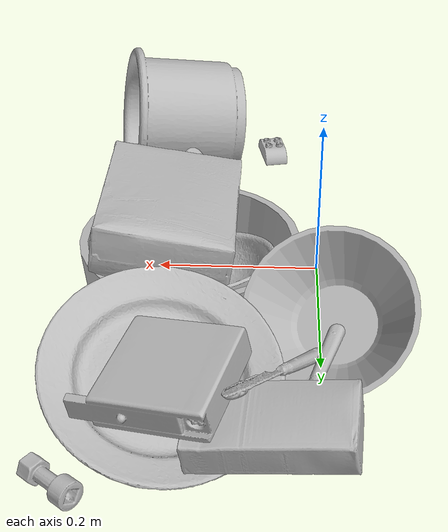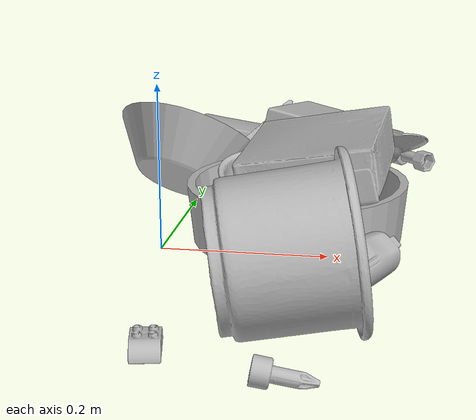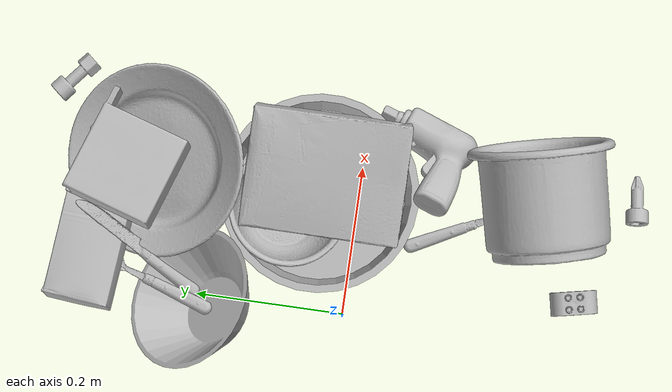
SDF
<sdf version="1.4">
  <world name="default">
    <light name="light1" type="point">
      <pose>0 0 1 0 0 0</pose>
      <diffuse>3 3 3 1</diffuse>
      <specular>3 3 3 1</specular>
    </light>
    <light name="light2" type="point">
      <pose>0 0.5 2 0 0 0</pose>
      <diffuse>1 1 1 1</diffuse>
      <specular>1 1 1 1</specular>
    </light>
    <light name="light3" type="point">
      <pose>0 0.5 2 0 0 0</pose>
      <diffuse>3 3 3 1</diffuse>
      <specular>3 3 3 1</specular>
    </light>
    <scene>
      <ambient>0.7 0.7 0.7</ambient>
    </scene>
    <model name="plate1">
      <link name="link_plate1">
        <collision name="default">
          <geometry>
            <mesh>
              <uri>model://plate/collision_meshes/collision.obj</uri>
              <scale>1.0 1.0 1.0</scale>
            </mesh>
          </geometry>
          <surface>
            <friction>
              <ode>
                <mu>0.5</mu>
                <mu2>0.5</mu2>
              </ode>
            </friction>
          <contact>
        <ode>
            <max_vel>0</max_vel>
            <min_depth>0.0001</min_depth>
            <kp>1e8</kp>
        </ode>
    </contact></surface>
        </collision>
        <visual name="default">
          <geometry>
            <mesh>
              <uri>model://plate/visual_meshes/visual.dae</uri>
              <scale>1.0 1.0 1.0</scale>
            </mesh>
          </geometry>
        </visual>
        <inertial>
          <mass>0.11001742631196976</mass>
          <pose>-0.0006044686888344586 0.000278257648460567 -0.0010561998933553696 0.00221878912528286 -0.0032254756485070152 0.4526088917028743</pose>
          <inertia>
            <ixx>0.00051466376</ixx>
            <iyy>0.0005097412</iyy>
            <izz>0.0010066056</izz>
            <ixy>0</ixy>
            <ixz>0</ixz>
            <iyz>0</iyz>
          </inertia>
        </inertial>
      </link>
      <pose>0.1705586165189743 0.27462610602378845 0.04454606771469116 -0.38671511070744985 -0.1276548088235757 0.07230656549532269</pose>
    </model>
    <model name="plate2">
      <link name="link_plate2">
        <collision name="default">
          <geometry>
            <mesh>
              <uri>model://pan_tefal/collision_meshes/collision.obj</uri>
              <scale>1.0 1.0 1.0</scale>
            </mesh>
          </geometry>
          <surface>
            <friction>
              <ode>
                <mu>0.5</mu>
                <mu2>0.5</mu2>
              </ode>
            </friction>
          <contact>
        <ode>
            <max_vel>0</max_vel>
            <min_depth>0.0001</min_depth>
            <kp>1e8</kp>
        </ode>
    </contact></surface>
        </collision>
        <visual name="default">
          <geometry>
            <mesh>
              <uri>model://pan_tefal/visual_meshes/visual.dae</uri>
              <scale>1.0 1.0 1.0</scale>
            </mesh>
          </geometry>
        </visual>
        <inertial>
          <mass>1.457576870918274</mass>
          <pose>-0.00018002426077146083 3.279360316810198e-05 -0.008514936082065105 0.0008190306735146073 -0.00033013365411173643 -0.33185917339097665</pose>
          <inertia>
            <ixx>0.010061583</ixx>
            <iyy>0.01012645</iyy>
            <izz>0.01852144</izz>
            <ixy>0</ixy>
            <ixz>0</ixz>
            <iyz>0</iyz>
          </inertia>
        </inertial>
      </link>
      <pose>0.15672647953033447 0.052457913756370544 0.038050588220357895 4.655690092866558e-06 -1.2613519803240164e-05 0.3229282234992718</pose>
    </model>
    <model name="bowl1">
      <link name="link_bowl1">
        <collision name="default">
          <geometry>
            <mesh>
              <uri>model://bowl_a/collision_meshes/collision.obj</uri>
              <scale>1.0 1.0 1.0</scale>
            </mesh>
          </geometry>
          <surface>
            <friction>
              <ode>
                <mu>0.5</mu>
                <mu2>0.5</mu2>
              </ode>
            </friction>
          <contact>
        <ode>
            <max_vel>0</max_vel>
            <min_depth>0.0001</min_depth>
            <kp>1e8</kp>
        </ode>
    </contact></surface>
        </collision>
        <visual name="default">
          <geometry>
            <mesh>
              <uri>model://bowl_a/visual_meshes/visual.dae</uri>
              <scale>1.0 1.0 1.0</scale>
            </mesh>
          </geometry>
        </visual>
        <inertial>
          <mass>0.29746556282043457</mass>
          <pose>0.0002786756958812475 4.7311452362919226e-05 -0.0013765294570475817 -0.0009805438325310402 -0.001093816410149737 -0.19123071729823712</pose>
          <inertia>
            <ixx>0.0008468981</ixx>
            <iyy>0.00085209764</iyy>
            <izz>0.0015062407</izz>
            <ixy>0</ixy>
            <ixz>0</ixz>
            <iyz>0</iyz>
          </inertia>
        </inertial>
      </link>
      <pose>-0.011682667769491673 0.1868898868560791 0.05936303362250328 -0.41218517058825055 0.587300891871999 0.561422044098853</pose>
    </model>
    <model name="bowl2">
      <link name="link_bowl2">
        <collision name="default">
          <geometry>
            <mesh>
              <uri>model://bowl/collision_meshes/collision.obj</uri>
              <scale>1.0 1.0 1.0</scale>
            </mesh>
          </geometry>
          <surface>
            <friction>
              <ode>
                <mu>0.5</mu>
                <mu2>0.5</mu2>
              </ode>
            </friction>
          <contact>
        <ode>
            <max_vel>0</max_vel>
            <min_depth>0.0001</min_depth>
            <kp>1e8</kp>
        </ode>
    </contact></surface>
        </collision>
        <visual name="default">
          <geometry>
            <mesh>
              <uri>model://bowl/visual_meshes/visual.dae</uri>
              <scale>1.0 1.0 1.0</scale>
            </mesh>
          </geometry>
        </visual>
        <inertial>
          <mass>0.12348172068595886</mass>
          <pose>0.0002044529828708619 -0.0010302055161446333 -0.0008042656118050218 -0.01576411854188812 0.014546757923928972 0.7140383762832406</pose>
          <inertia>
            <ixx>0.0002836472</ixx>
            <iyy>0.00027730947</iyy>
            <izz>0.00047719217</izz>
            <ixy>0</ixy>
            <ixz>0</ixz>
            <iyz>0</iyz>
          </inertia>
        </inertial>
      </link>
      <pose>0.12927958369255066 0.09496885538101196 0.04363704472780228 -0.16208532205109888 -0.11364531534735278 -2.8708146725744097</pose>
    </model>
    <model name="silverware1">
      <link name="link_silverware1">
        <collision name="default">
          <geometry>
            <mesh>
              <uri>model://spoon/collision_meshes/collision.obj</uri>
              <scale>1.0 1.0 1.0</scale>
            </mesh>
          </geometry>
          <surface>
            <friction>
              <ode>
                <mu>0.5</mu>
                <mu2>0.5</mu2>
              </ode>
            </friction>
          <contact>
        <ode>
            <max_vel>0</max_vel>
            <min_depth>0.0001</min_depth>
            <kp>1e8</kp>
        </ode>
    </contact></surface>
        </collision>
        <visual name="default">
          <geometry>
            <mesh>
              <uri>model://spoon/visual_meshes/visual.dae</uri>
              <scale>1.0 1.0 1.0</scale>
            </mesh>
          </geometry>
        </visual>
        <inertial>
          <mass>0.03284037858247757</mass>
          <pose>-0.005526319611817598 -0.001603417214937508 -0.000727165665011853 0.03521671059584429 -0.039065856285187314 0.0061506144474233635</pose>
          <inertia>
            <ixx>1.8266356e-06</ixx>
            <iyy>0.00012495652</iyy>
            <izz>0.00012585736</izz>
            <ixy>0</ixy>
            <ixz>0</ixz>
            <iyz>0</iyz>
          </inertia>
        </inertial>
      </link>
      <pose>0.012657024897634983 0.2679460048675537 0.026744183152914047 -3.1030698771430734 0.11307274810137831 1.2604007768763734</pose>
    </model>
    <model name="box1">
      <link name="link_box1">
        <collision name="default">
          <geometry>
            <mesh>
              <uri>model://cracker_box/collision_meshes/collision.obj</uri>
              <scale>1.0 1.0 1.0</scale>
            </mesh>
          </geometry>
          <surface>
            <friction>
              <ode>
                <mu>0.5</mu>
                <mu2>0.5</mu2>
              </ode>
            </friction>
          <contact>
        <ode>
            <max_vel>0</max_vel>
            <min_depth>0.0001</min_depth>
            <kp>1e8</kp>
        </ode>
    </contact></surface>
        </collision>
        <visual name="default">
          <geometry>
            <mesh>
              <uri>model://cracker_box/visual_meshes/visual.dae</uri>
              <scale>1.0 1.0 1.0</scale>
            </mesh>
          </geometry>
        </visual>
        <inertial>
          <mass>2.434305191040039</mass>
          <pose>0.0009464126778766513 0.0002543424488976598 -0.0017029534792527556 -0.0003162073658586955 -0.011106488669321329 0.0025467952332158075</pose>
          <inertia>
            <ixx>0.0061917845</ixx>
            <iyy>0.010223853</iyy>
            <izz>0.014590379</izz>
            <ixy>0</ixy>
            <ixz>0</ixz>
            <iyz>0</iyz>
          </inertia>
        </inertial>
      </link>
      <pose>0.1820896863937378 0.04730478301644325 0.10385914891958237 2.980705772216835 -0.0027135739970529996 1.5752472600092957</pose>
    </model>
    <model name="box2">
      <link name="link_box2">
        <collision name="default">
          <geometry>
            <mesh>
              <uri>model://sugar_box/collision_meshes/collision.obj</uri>
              <scale>1.0 1.0 1.0</scale>
            </mesh>
          </geometry>
          <surface>
            <friction>
              <ode>
                <mu>0.5</mu>
                <mu2>0.5</mu2>
              </ode>
            </friction>
          <contact>
        <ode>
            <max_vel>0</max_vel>
            <min_depth>0.0001</min_depth>
            <kp>1e8</kp>
        </ode>
    </contact></surface>
        </collision>
        <visual name="default">
          <geometry>
            <mesh>
              <uri>model://sugar_box/visual_meshes/visual.dae</uri>
              <scale>1.0 1.0 1.0</scale>
            </mesh>
          </geometry>
        </visual>
        <inertial>
          <mass>0.5700510144233704</mass>
          <pose>0.0010343727190047503 3.849109634757042e-05 -0.00036364805418998003 -0.00040462615490547663 0.0010506634056045778 0.0026153790218534064</pose>
          <inertia>
            <ixx>0.00047496508</ixx>
            <iyy>0.0015351841</iyy>
            <izz>0.0018377992</izz>
            <ixy>0</ixy>
            <ixz>0</ixz>
            <iyz>0</iyz>
          </inertia>
        </inertial>
      </link>
      <pose>0.053487252444028854 0.34757810831069946 0.04301627725362778 -3.017900331050423 -0.12412406545779428 3.0583621701164954</pose>
    </model>
    <model name="cup1">
      <link name="link_cup1">
        <collision name="default">
          <geometry>
            <mesh>
              <uri>model://i_cups/collision_meshes/collision.obj</uri>
              <scale>2.0 2.0 2.0</scale>
            </mesh>
          </geometry>
          <surface>
            <friction>
              <ode>
                <mu>0.5</mu>
                <mu2>0.5</mu2>
              </ode>
            </friction>
          <contact>
        <ode>
            <max_vel>0</max_vel>
            <min_depth>0.0001</min_depth>
            <kp>1e8</kp>
        </ode>
    </contact></surface>
        </collision>
        <visual name="default">
          <geometry>
            <mesh>
              <uri>model://i_cups/visual_meshes/visual.dae</uri>
              <scale>2.0 2.0 2.0</scale>
            </mesh>
          </geometry>
        </visual>
        <inertial>
          <mass>0.8749163746833801</mass>
          <pose>0.0002248019736725837 0.0003359491820447147 -0.0017158064292743802 -0.028982988446176382 -0.03987323668700188 -0.3459135059395342</pose>
          <inertia>
            <ixx>0.0048453393</ixx>
            <iyy>0.0048880302</iyy>
            <izz>0.0054154512</izz>
            <ixy>0</ixy>
            <ixz>0</ixz>
            <iyz>0</iyz>
          </inertia>
        </inertial>
      </link>
      <pose>0.18794016540050507 -0.24475502967834473 0.08956510573625565 -0.3233689771960843 -1.4452003087017118 -2.5906490775727007</pose>
    </model>
    <model name="silverware2">
      <link name="link_silverware2">
        <collision name="default">
          <geometry>
            <mesh>
              <uri>model://fork/collision_meshes/collision.obj</uri>
              <scale>1.0 1.0 1.0</scale>
            </mesh>
          </geometry>
          <surface>
            <friction>
              <ode>
                <mu>0.5</mu>
                <mu2>0.5</mu2>
              </ode>
            </friction>
          <contact>
        <ode>
            <max_vel>0</max_vel>
            <min_depth>0.0001</min_depth>
            <kp>1e8</kp>
        </ode>
    </contact></surface>
        </collision>
        <visual name="default">
          <geometry>
            <mesh>
              <uri>model://fork/visual_meshes/visual.dae</uri>
              <scale>1.0 1.0 1.0</scale>
            </mesh>
          </geometry>
        </visual>
        <inertial>
          <mass>0.021080315113067627</mass>
          <pose>-0.02957003377377987 0.00046588227269239724 0.0003218860656488687 -0.013550583544297463 -0.010977830979267335 0.014453899239778455</pose>
          <inertia>
            <ixx>7.3898417e-07</ixx>
            <iyy>5.503463e-05</iyy>
            <izz>5.5365177e-05</izz>
            <ixy>0</ixy>
            <ixz>0</ixz>
            <iyz>0</iyz>
          </inertia>
        </inertial>
      </link>
      <pose>0.1446424126625061 -0.15756669640541077 0.03628513216972351 -2.9535489202441756 -0.06211002547553528 -1.1078534357986762</pose>
    </model>
    <model name="silverware3">
      <link name="link_silverware3">
        <collision name="default">
          <geometry>
            <mesh>
              <uri>model://knife/collision_meshes/collision.obj</uri>
              <scale>1.0 1.0 1.0</scale>
            </mesh>
          </geometry>
          <surface>
            <friction>
              <ode>
                <mu>0.5</mu>
                <mu2>0.5</mu2>
              </ode>
            </friction>
          <contact>
        <ode>
            <max_vel>0</max_vel>
            <min_depth>0.0001</min_depth>
            <kp>1e8</kp>
        </ode>
    </contact></surface>
        </collision>
        <visual name="default">
          <geometry>
            <mesh>
              <uri>model://knife/visual_meshes/visual.dae</uri>
              <scale>1.0 1.0 1.0</scale>
            </mesh>
          </geometry>
        </visual>
        <inertial>
          <mass>0.03557601198554039</mass>
          <pose>-0.023785259574651718 0.0015275123296305537 5.062016498413868e-05 0.07305791577183936 0.01724842049726123 -0.007409813921982597</pose>
          <inertia>
            <ixx>1.0097915e-06</ixx>
            <iyy>0.00013667726</iyy>
            <izz>0.00013700248</izz>
            <ixy>0</ixy>
            <ixz>0</ixz>
            <iyz>0</iyz>
          </inertia>
        </inertial>
      </link>
      <pose>0.05224078893661499 0.282501757144928 0.05804581195116043 0.20446545885941808 -0.3771202838401916 1.030090666909442</pose>
    </model>
    <model name="toy1">
      <link name="link_toy1">
        <collision name="default">
          <geometry>
            <mesh>
              <uri>model://b_toy_airplane/collision_meshes/collision.obj</uri>
              <scale>1.0 1.0 1.0</scale>
            </mesh>
          </geometry>
          <surface>
            <friction>
              <ode>
                <mu>0.5</mu>
                <mu2>0.5</mu2>
              </ode>
            </friction>
          <contact>
        <ode>
            <max_vel>0</max_vel>
            <min_depth>0.0001</min_depth>
            <kp>1e8</kp>
        </ode>
    </contact></surface>
        </collision>
        <visual name="default">
          <geometry>
            <mesh>
              <uri>model://b_toy_airplane/visual_meshes/visual.dae</uri>
              <scale>1.0 1.0 1.0</scale>
            </mesh>
          </geometry>
        </visual>
        <inertial>
          <mass>0.2131570726633072</mass>
          <pose>0.005081363953649998 0.00401558680459857 0.00954306498169899 -0.040018114912876775 -0.04022188568687408 -0.5601502887595425</pose>
          <inertia>
            <ixx>0.00039573</ixx>
            <iyy>0.00015817716</iyy>
            <izz>0.00049232744</izz>
            <ixy>0</ixy>
            <ixz>0</ixz>
            <iyz>0</iyz>
          </inertia>
        </inertial>
      </link>
      <pose>0.23329295217990875 -0.10142963379621506 0.0529092438519001 -2.3570910427094205 -0.006838848636832394 1.2076865922793565</pose>
    </model>
    <model name="toy2">
      <link name="link_toy2">
        <collision name="default">
          <geometry>
            <mesh>
              <uri>model://nine_hole_peg_test/collision_meshes/collision.obj</uri>
              <scale>1.0 1.0 1.0</scale>
            </mesh>
          </geometry>
          <surface>
            <friction>
              <ode>
                <mu>0.5</mu>
                <mu2>0.5</mu2>
              </ode>
            </friction>
          <contact>
        <ode>
            <max_vel>0</max_vel>
            <min_depth>0.0001</min_depth>
            <kp>1e8</kp>
        </ode>
    </contact></surface>
        </collision>
        <visual name="default">
          <geometry>
            <mesh>
              <uri>model://nine_hole_peg_test/visual_meshes/visual.dae</uri>
              <scale>1.0 1.0 1.0</scale>
            </mesh>
          </geometry>
        </visual>
        <inertial>
          <mass>0.9403080940246582</mass>
          <pose>-0.004617387894541025 -0.009647617116570473 2.646069333422929e-05 -0.0014666798116952742 0.0007194174694617774 -0.6342424398534297</pose>
          <inertia>
            <ixx>0.0014703267</ixx>
            <iyy>0.0013728285</iyy>
            <izz>0.0025764457</izz>
            <ixy>0</ixy>
            <ixz>0</ixz>
            <iyz>0</iyz>
          </inertia>
        </inertial>
      </link>
      <pose>0.1680675595998764 0.31361180543899536 0.0720180869102478 -2.9999364754881244 0.1348684230844081 1.2646772668056085</pose>
    </model>
    <model name="toy3">
      <link name="link_toy3">
        <collision name="default">
          <geometry>
            <mesh>
              <uri>model://a_lego_duplo/collision_meshes/collision.obj</uri>
              <scale>1.0 1.0 1.0</scale>
            </mesh>
          </geometry>
          <surface>
            <friction>
              <ode>
                <mu>0.5</mu>
                <mu2>0.5</mu2>
              </ode>
            </friction>
          <contact>
        <ode>
            <max_vel>0</max_vel>
            <min_depth>0.0001</min_depth>
            <kp>1e8</kp>
        </ode>
    </contact></surface>
        </collision>
        <visual name="default">
          <geometry>
            <mesh>
              <uri>model://a_lego_duplo/visual_meshes/visual.dae</uri>
              <scale>1.0 1.0 1.0</scale>
            </mesh>
          </geometry>
        </visual>
        <inertial>
          <mass>0.023130550980567932</mass>
          <pose>-0.00011337705655023456 0.00018517566786613315 0.00036926098982803524 -0.014116995996849858 -0.00012565876120078728 6.143831699070756e-05</pose>
          <inertia>
            <ixx>2.9655212e-06</ixx>
            <iyy>6.643419e-06</iyy>
            <izz>8.229349e-06</izz>
            <ixy>0</ixy>
            <ixz>0</ixz>
            <iyz>0</iyz>
          </inertia>
        </inertial>
      </link>
      <pose>0.059108126908540726 -0.3085953891277313 0.012111973017454147 -1.3278833789720992e-07 -1.2051417434489715e-06 1.7822793940937778</pose>
    </model>
    <model name="toy4">
      <link name="link_toy4">
        <collision name="default">
          <geometry>
            <mesh>
              <uri>model://c_toy_airplane/collision_meshes/collision.obj</uri>
              <scale>1.0 1.0 1.0</scale>
            </mesh>
          </geometry>
          <surface>
            <friction>
              <ode>
                <mu>0.5</mu>
                <mu2>0.5</mu2>
              </ode>
            </friction>
          <contact>
        <ode>
            <max_vel>0</max_vel>
            <min_depth>0.0001</min_depth>
            <kp>1e8</kp>
        </ode>
    </contact></surface>
        </collision>
        <visual name="default">
          <geometry>
            <mesh>
              <uri>model://c_toy_airplane/visual_meshes/visual.dae</uri>
              <scale>1.0 1.0 1.0</scale>
            </mesh>
          </geometry>
        </visual>
        <inertial>
          <mass>0.016945533454418182</mass>
          <pose>-0.00023024251277092844 -4.426267139479023e-07 -0.006080526392906904 -0.00619248279943298 -0.01679780513617648 0.7654772671109313</pose>
          <inertia>
            <ixx>7.781044e-06</ixx>
            <iyy>7.759084e-06</iyy>
            <izz>1.826835e-06</izz>
            <ixy>0</ixy>
            <ixz>0</ixz>
            <iyz>0</iyz>
          </inertia>
        </inertial>
      </link>
      <pose>0.2677547335624695 0.40192463994026184 0.014369776472449303 -1.675933399461727 1.215779079080861 -2.365067868521007</pose>
    </model>
    <model name="toy5">
      <link name="link_toy5">
        <collision name="default">
          <geometry>
            <mesh>
              <uri>model://d_toy_airplane/collision_meshes/collision.obj</uri>
              <scale>1.0 1.0 1.0</scale>
            </mesh>
          </geometry>
          <surface>
            <friction>
              <ode>
                <mu>0.5</mu>
                <mu2>0.5</mu2>
              </ode>
            </friction>
          <contact>
        <ode>
            <max_vel>0</max_vel>
            <min_depth>0.0001</min_depth>
            <kp>1e8</kp>
        </ode>
    </contact></surface>
        </collision>
        <visual name="default">
          <geometry>
            <mesh>
              <uri>model://d_toy_airplane/visual_meshes/visual.dae</uri>
              <scale>1.0 1.0 1.0</scale>
            </mesh>
          </geometry>
        </visual>
        <inertial>
          <mass>0.01782749593257904</mass>
          <pose>9.410309576196596e-05 -5.809334834339097e-05 -0.011728094890713692 0.00026697885790152897 0.00467897817044427 0.5194648744438854</pose>
          <inertia>
            <ixx>5.3443378e-06</ixx>
            <iyy>5.3483677e-06</iyy>
            <izz>1.6134899e-06</izz>
            <ixy>0</ixy>
            <ixz>0</ixz>
            <iyz>0</iyz>
          </inertia>
        </inertial>
      </link>
      <pose>0.20899048447608948 -0.3735603094100952 0.011741122230887413 -1.9079429213897274 -0.9253047116623673 -1.1873925058371586</pose>
    </model>
  <physics type="ode">
      <max_contacts>50</max_contacts>
      <ode>
        <solver>
          <type>quick</type>
          <iters>75</iters>
        </solver>
        <constraints>
          <contact_max_correcting_vel>0</contact_max_correcting_vel>
          <contact_surface_layer>0</contact_surface_layer>
        </constraints>
      </ode>
    </physics></world>
</sdf>
